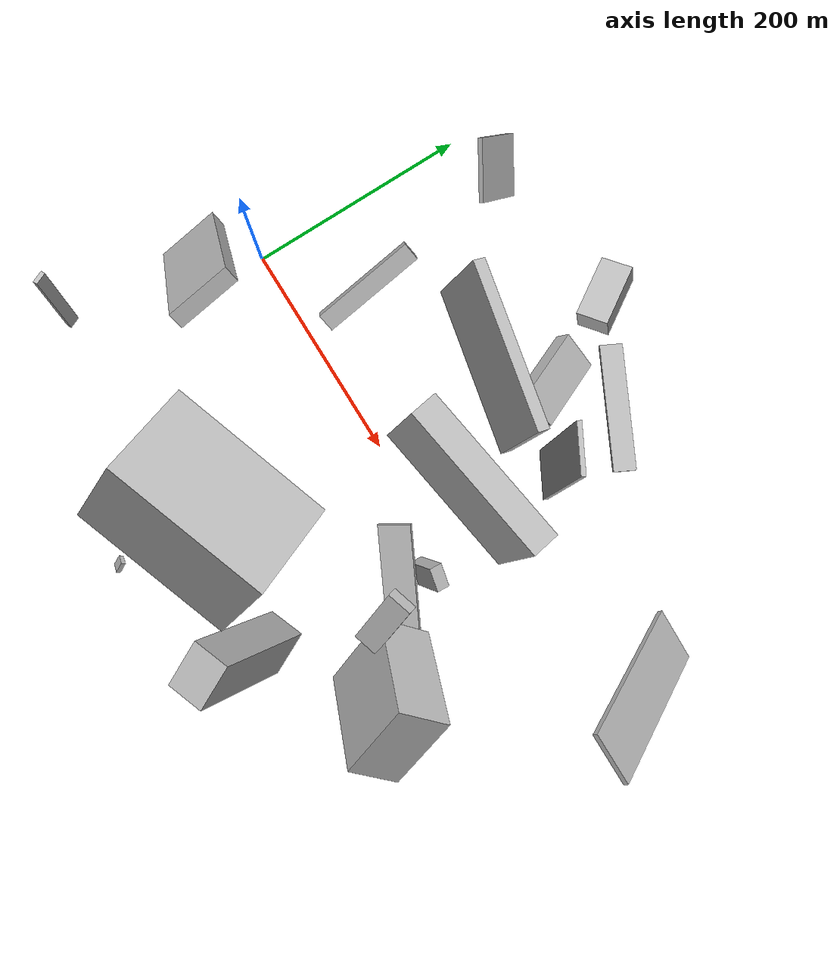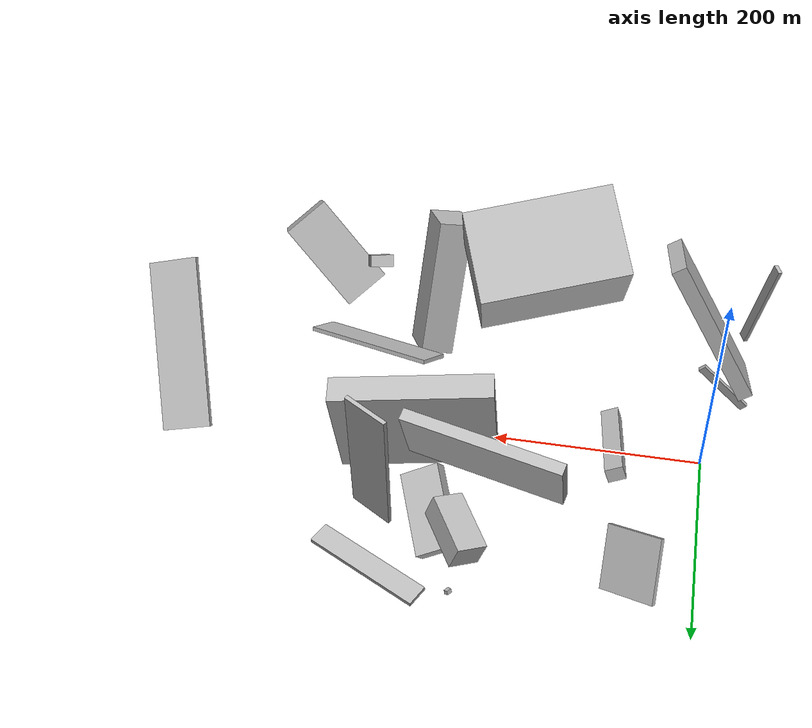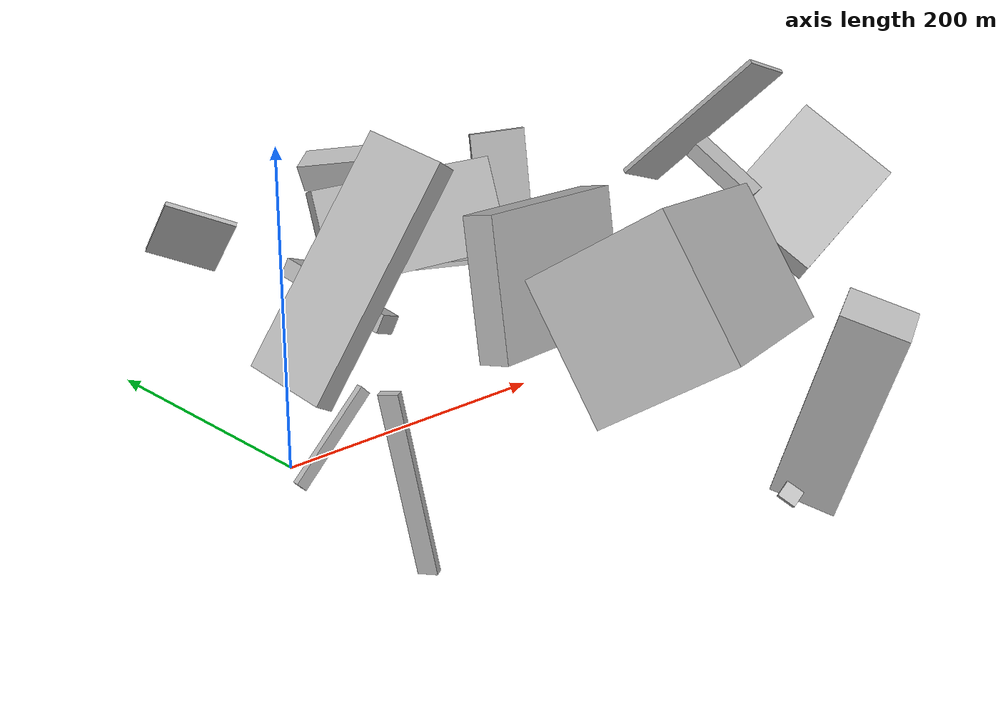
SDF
<sdf version="1.6">
 <world name="default">
  <scene>
   <sky><clouds><speed>12</speed></clouds></sky>
   <ambient>0.4 0.4 0.4 1</ambient>
   <background>0.7 0.7 0.7 1</background>
   <shadows>1</shadows>
  </scene>
  <gravity>0 0 -9.8066</gravity>
  <magnetic_field>6e-06 2.3e-05 -4.2e-05</magnetic_field>
  <physics default="0" name="default_physics" type="ode">
   <ode>
    <solver>
     <type>quick</type>
     <iters>10</iters>
     <sor>1.0</sor>
     <use_dynamic_moi_rescaling>0</use_dynamic_moi_rescaling>
    </solver>
    <constraints>
     <cfm>0</cfm>
     <erp>0.2</erp>
     <contact_max_correcting_vel>100</contact_max_correcting_vel>
     <contact_surface_layer>0.001</contact_surface_layer>
    </constraints>
   </ode>
   <max_step_size>0.004</max_step_size>
   <real_time_factor>1</real_time_factor>
   <real_time_update_rate>250</real_time_update_rate>
  </physics>
  <light name="sun" type="directional">
   <pose>0 0 10 0 0 0</pose>
   <diffuse>0.8 0.8 0.8 1</diffuse>
   <specular>0.2 0.2 0.2 1</specular>
   <attenuation>
    <range>1000</range>
    <constant>0.9</constant>
    <linear>0.01</linear>
    <quadratic>0.001</quadratic>
   </attenuation>
   <direction>-0.5 0.1 -0.9</direction>
  </light>
  <model name="building_1">
   <static>0</static>
   <pose>389.1348598782009 -132.7743078632403 105.60623972365431 0.6644529660850818 0.762113867801616 2.785897674921544</pose>
   <link name="link">
    <gravity>0</gravity>
    <pose>0 0 38.0 0 0 0</pose>
    <collision name="collision"><geometry><box><size>90 45 76</size></box></geometry></collision>
    <visual name="visual">
     <cast_shadows>0</cast_shadows>
     <geometry><box><size>90 45 76</size></box></geometry>
     <material>
      <script>
       <uri>model://HANNAS_wall/materials/scripts</uri>
       <uri>model://HANNAS_wall/materials/textures</uri>
       <name>vrc/HANNAS_wall</name>
      </script>
     </material>
    </visual>
   </link>
  </model>
  <model name="building_2">
   <static>0</static>
   <pose>458.6440487502558 116.97648153604459 90.47648650743648 0.38646461661678416 -0.7343999811103962 1.3200741514138605</pose>
   <link name="link">
    <gravity>0</gravity>
    <pose>0 0 75.0 0 0 0</pose>
    <collision name="collision"><geometry><box><size>4 47 150</size></box></geometry></collision>
    <visual name="visual">
     <cast_shadows>0</cast_shadows>
     <geometry><box><size>4 47 150</size></box></geometry>
     <material>
      <script>
       <uri>model://HANNAS_wall/materials/scripts</uri>
       <uri>model://HANNAS_wall/materials/textures</uri>
       <name>vrc/HANNAS_wall</name>
      </script>
     </material>
    </visual>
   </link>
  </model>
  <model name="building_3">
   <static>0</static>
   <pose>194.11309242228205 32.90260558242278 62.33129647654833 1.8348051729021524 -1.3889379116331497 1.468076257176484</pose>
   <link name="link">
    <gravity>0</gravity>
    <pose>0 0 75.0 0 0 0</pose>
    <collision name="collision"><geometry><box><size>109 26 150</size></box></geometry></collision>
    <visual name="visual">
     <cast_shadows>0</cast_shadows>
     <geometry><box><size>109 26 150</size></box></geometry>
     <material>
      <script>
       <uri>model://HANNAS_wall/materials/scripts</uri>
       <uri>model://HANNAS_wall/materials/textures</uri>
       <name>vrc/HANNAS_wall</name>
      </script>
     </material>
    </visual>
   </link>
  </model>
  <model name="building_4">
   <static>0</static>
   <pose>120.53740090733098 127.99509559993925 94.28732921202082 1.5060234501928775 0.35220707106899396 1.333916630361025</pose>
   <link name="link">
    <gravity>0</gravity>
    <pose>0 0 73.5 0 0 0</pose>
    <collision name="collision"><geometry><box><size>11 72 147</size></box></geometry></collision>
    <visual name="visual">
     <cast_shadows>0</cast_shadows>
     <geometry><box><size>11 72 147</size></box></geometry>
     <material>
      <script>
       <uri>model://HANNAS_wall/materials/scripts</uri>
       <uri>model://HANNAS_wall/materials/textures</uri>
       <name>vrc/HANNAS_wall</name>
      </script>
     </material>
    </visual>
   </link>
  </model>
  <model name="building_5">
   <static>0</static>
   <pose>246.15813541188723 119.74748081268145 78.95531369109774 -2.318529142857557 -0.9378660224728796 1.0334546395491526</pose>
   <link name="link">
    <gravity>0</gravity>
    <pose>0 0 37.0 0 0 0</pose>
    <collision name="collision"><geometry><box><size>14 36 74</size></box></geometry></collision>
    <visual name="visual">
     <cast_shadows>0</cast_shadows>
     <geometry><box><size>14 36 74</size></box></geometry>
     <material>
      <script>
       <uri>model://HANNAS_wall/materials/scripts</uri>
       <uri>model://HANNAS_wall/materials/textures</uri>
       <name>vrc/HANNAS_wall</name>
      </script>
     </material>
    </visual>
   </link>
  </model>
  <model name="building_6">
   <static>0</static>
   <pose>-27.534230444827323 -44.081549016050104 72.91537796648419 -0.5210085620643552 0.19894155619705525 -1.4599110742900265</pose>
   <link name="link">
    <gravity>0</gravity>
    <pose>0 0 75.0 0 0 0</pose>
    <collision name="collision"><geometry><box><size>55 14 150</size></box></geometry></collision>
    <visual name="visual">
     <cast_shadows>0</cast_shadows>
     <geometry><box><size>55 14 150</size></box></geometry>
     <material>
      <script>
       <uri>model://HANNAS_wall/materials/scripts</uri>
       <uri>model://HANNAS_wall/materials/textures</uri>
       <name>vrc/HANNAS_wall</name>
      </script>
     </material>
    </visual>
   </link>
  </model>
  <model name="building_7">
   <static>0</static>
   <pose>329.97815402820515 -60.225954140600464 54.633312446449345 2.7465350129512403 -0.2424760006445967 2.678694344696694</pose>
   <link name="link">
    <gravity>0</gravity>
    <pose>0 0 2.0 0 0 0</pose>
    <collision name="collision"><geometry><box><size>150 29 4</size></box></geometry></collision>
    <visual name="visual">
     <cast_shadows>0</cast_shadows>
     <geometry><box><size>150 29 4</size></box></geometry>
     <material>
      <script>
       <uri>model://HANNAS_wall/materials/scripts</uri>
       <uri>model://HANNAS_wall/materials/textures</uri>
       <name>vrc/HANNAS_wall</name>
      </script>
     </material>
    </visual>
   </link>
  </model>
  <model name="building_8">
   <static>0</static>
   <pose>314.0400224622677 -77.0329213810734 145.81792246629414 1.4413556655457747 0.9020387117066387 1.7641476666506122</pose>
   <link name="link">
    <gravity>0</gravity>
    <pose>0 0 10.5 0 0 0</pose>
    <collision name="collision"><geometry><box><size>11 53 21</size></box></geometry></collision>
    <visual name="visual">
     <cast_shadows>0</cast_shadows>
     <geometry><box><size>11 53 21</size></box></geometry>
     <material>
      <script>
       <uri>model://HANNAS_wall/materials/scripts</uri>
       <uri>model://HANNAS_wall/materials/textures</uri>
       <name>vrc/HANNAS_wall</name>
      </script>
     </material>
    </visual>
   </link>
  </model>
  <model name="building_9">
   <static>0</static>
   <pose>210.4781377242307 191.25731044956558 4.203007896685426 -0.16051030053484333 -0.3790305170753652 2.6045752928408574</pose>
   <link name="link">
    <gravity>0</gravity>
    <pose>0 0 2.0 0 0 0</pose>
    <collision name="collision"><geometry><box><size>4 5 4</size></box></geometry></collision>
    <visual name="visual">
     <cast_shadows>0</cast_shadows>
     <geometry><box><size>4 5 4</size></box></geometry>
     <material>
      <script>
       <uri>model://HANNAS_wall/materials/scripts</uri>
       <uri>model://HANNAS_wall/materials/textures</uri>
       <name>vrc/HANNAS_wall</name>
      </script>
     </material>
    </visual>
   </link>
  </model>
  <model name="building_10">
   <static>0</static>
   <pose>57.89095493287153 199.10909229558027 93.32409670322855 -0.59725347022366 -0.8718047979556203 -1.5973483989884363</pose>
   <link name="link">
    <gravity>0</gravity>
    <pose>0 0 2.0 0 0 0</pose>
    <collision name="collision"><geometry><box><size>54 52 4</size></box></geometry></collision>
    <visual name="visual">
     <cast_shadows>0</cast_shadows>
     <geometry><box><size>54 52 4</size></box></geometry>
     <material>
      <script>
       <uri>model://HANNAS_wall/materials/scripts</uri>
       <uri>model://HANNAS_wall/materials/textures</uri>
       <name>vrc/HANNAS_wall</name>
      </script>
     </material>
    </visual>
   </link>
  </model>
  <model name="building_11">
   <static>0</static>
   <pose>159.32080104940505 -118.04082434389173 80.29319368002068 0.21611497569600283 -0.990498846326665 1.7177201002699887</pose>
   <link name="link">
    <gravity>0</gravity>
    <pose>0 0 47.0 0 0 0</pose>
    <collision name="collision"><geometry><box><size>94 150 94</size></box></geometry></collision>
    <visual name="visual">
     <cast_shadows>0</cast_shadows>
     <geometry><box><size>94 150 94</size></box></geometry>
     <material>
      <script>
       <uri>model://HANNAS_wall/materials/scripts</uri>
       <uri>model://HANNAS_wall/materials/textures</uri>
       <name>vrc/HANNAS_wall</name>
      </script>
     </material>
    </visual>
   </link>
  </model>
  <model name="building_12">
   <static>0</static>
   <pose>323.9465422377916 -17.371547178533035 33.90646496998312 -2.7755565919648464 -0.31974620293461886 2.9386547763714606</pose>
   <link name="link">
    <gravity>0</gravity>
    <pose>0 0 17.5 0 0 0</pose>
    <collision name="collision"><geometry><box><size>22 12 35</size></box></geometry></collision>
    <visual name="visual">
     <cast_shadows>0</cast_shadows>
     <geometry><box><size>22 12 35</size></box></geometry>
     <material>
      <script>
       <uri>model://HANNAS_wall/materials/scripts</uri>
       <uri>model://HANNAS_wall/materials/textures</uri>
       <name>vrc/HANNAS_wall</name>
      </script>
     </material>
    </visual>
   </link>
  </model>
  <model name="building_13">
   <static>0</static>
   <pose>284.88905125113195 -226.70898231114478 87.77142094878138 -2.9003361888348773 0.28260993483748514 -1.1123648616778743</pose>
   <link name="link">
    <gravity>0</gravity>
    <pose>0 0 75.0 0 0 0</pose>
    <collision name="collision"><geometry><box><size>45 35 150</size></box></geometry></collision>
    <visual name="visual">
     <cast_shadows>0</cast_shadows>
     <geometry><box><size>45 35 150</size></box></geometry>
     <material>
      <script>
       <uri>model://HANNAS_wall/materials/scripts</uri>
       <uri>model://HANNAS_wall/materials/textures</uri>
       <name>vrc/HANNAS_wall</name>
      </script>
     </material>
    </visual>
   </link>
  </model>
  <model name="building_14">
   <static>0</static>
   <pose>92.15047134454163 60.67281528152365 75.23402194727025 -1.2305803262496542 -0.2299982424803294 1.6839500329828545</pose>
   <link name="link">
    <gravity>0</gravity>
    <pose>0 0 8.0 0 0 0</pose>
    <collision name="collision"><geometry><box><size>93 13 16</size></box></geometry></collision>
    <visual name="visual">
     <cast_shadows>0</cast_shadows>
     <geometry><box><size>93 13 16</size></box></geometry>
     <material>
      <script>
       <uri>model://HANNAS_wall/materials/scripts</uri>
       <uri>model://HANNAS_wall/materials/textures</uri>
       <name>vrc/HANNAS_wall</name>
      </script>
     </material>
    </visual>
   </link>
  </model>
  <model name="building_15">
   <static>0</static>
   <pose>330.8981926386457 166.8296785154867 31.418194753423034 1.9671235669556941 1.5229009707492012 -1.6392826662413709</pose>
   <link name="link">
    <gravity>0</gravity>
    <pose>0 0 55.5 0 0 0</pose>
    <collision name="collision"><geometry><box><size>4 20 111</size></box></geometry></collision>
    <visual name="visual">
     <cast_shadows>0</cast_shadows>
     <geometry><box><size>4 20 111</size></box></geometry>
     <material>
      <script>
       <uri>model://HANNAS_wall/materials/scripts</uri>
       <uri>model://HANNAS_wall/materials/textures</uri>
       <name>vrc/HANNAS_wall</name>
      </script>
     </material>
    </visual>
   </link>
  </model>
  <model name="building_16">
   <static>0</static>
   <pose>185.335914079972 232.90980235331233 118.0204476502638 1.4185769161033743 -0.30313749611577173 0.6116207399360536</pose>
   <link name="link">
    <gravity>0</gravity>
    <pose>0 0 26.0 0 0 0</pose>
    <collision name="collision"><geometry><box><size>26 22 52</size></box></geometry></collision>
    <visual name="visual">
     <cast_shadows>0</cast_shadows>
     <geometry><box><size>26 22 52</size></box></geometry>
     <material>
      <script>
       <uri>model://HANNAS_wall/materials/scripts</uri>
       <uri>model://HANNAS_wall/materials/textures</uri>
       <name>vrc/HANNAS_wall</name>
      </script>
     </material>
    </visual>
   </link>
  </model>
  <model name="building_17">
   <static>0</static>
   <pose>-10.904395492265863 -62.612202844625216 42.01223576972501 -0.7783224367458275 0.00963575455651277 1.5484156516164447</pose>
   <link name="link">
    <gravity>0</gravity>
    <pose>0 0 4.0 0 0 0</pose>
    <collision name="collision"><geometry><box><size>4 65 8</size></box></geometry></collision>
    <visual name="visual">
     <cast_shadows>0</cast_shadows>
     <geometry><box><size>4 65 8</size></box></geometry>
     <material>
      <script>
       <uri>model://HANNAS_wall/materials/scripts</uri>
       <uri>model://HANNAS_wall/materials/textures</uri>
       <name>vrc/HANNAS_wall</name>
      </script>
     </material>
    </visual>
   </link>
  </model>
  <model name="building_18">
   <static>0</static>
   <pose>-47.584514359386745 -170.23580852359964 63.66463562999027 1.4328474568472664 0.12869483888982908 2.00299899261135</pose>
   <link name="link">
    <gravity>0</gravity>
    <pose>0 0 2.0 0 0 0</pose>
    <collision name="collision"><geometry><box><size>11 102 4</size></box></geometry></collision>
    <visual name="visual">
     <cast_shadows>0</cast_shadows>
     <geometry><box><size>11 102 4</size></box></geometry>
     <material>
      <script>
       <uri>model://HANNAS_wall/materials/scripts</uri>
       <uri>model://HANNAS_wall/materials/textures</uri>
       <name>vrc/HANNAS_wall</name>
      </script>
     </material>
    </visual>
   </link>
  </model>
  <model name="building_19">
   <static>0</static>
   <pose>313.5831948545275 106.32105891895607 78.67060712290143 -2.5094113818165265 -1.468341090938733 2.001789258292519</pose>
   <link name="link">
    <gravity>0</gravity>
    <pose>0 0 22.0 0 0 0</pose>
    <collision name="collision"><geometry><box><size>150 4 44</size></box></geometry></collision>
    <visual name="visual">
     <cast_shadows>0</cast_shadows>
     <geometry><box><size>150 4 44</size></box></geometry>
     <material>
      <script>
       <uri>model://HANNAS_wall/materials/scripts</uri>
       <uri>model://HANNAS_wall/materials/textures</uri>
       <name>vrc/HANNAS_wall</name>
      </script>
     </material>
    </visual>
   </link>
  </model>
  <model name="building_20">
   <static>0</static>
   <pose>170.1975328674336 -251.43525873051462 10.518710508840575 0.8451926816006466 0.7274227066495114 3.0303259028866627</pose>
   <link name="link">
    <gravity>0</gravity>
    <pose>0 0 5.5 0 0 0</pose>
    <collision name="collision"><geometry><box><size>10 4 11</size></box></geometry></collision>
    <visual name="visual">
     <cast_shadows>0</cast_shadows>
     <geometry><box><size>10 4 11</size></box></geometry>
     <material>
      <script>
       <uri>model://HANNAS_wall/materials/scripts</uri>
       <uri>model://HANNAS_wall/materials/textures</uri>
       <name>vrc/HANNAS_wall</name>
      </script>
     </material>
    </visual>
   </link>
  </model>
 </world>
</sdf>
